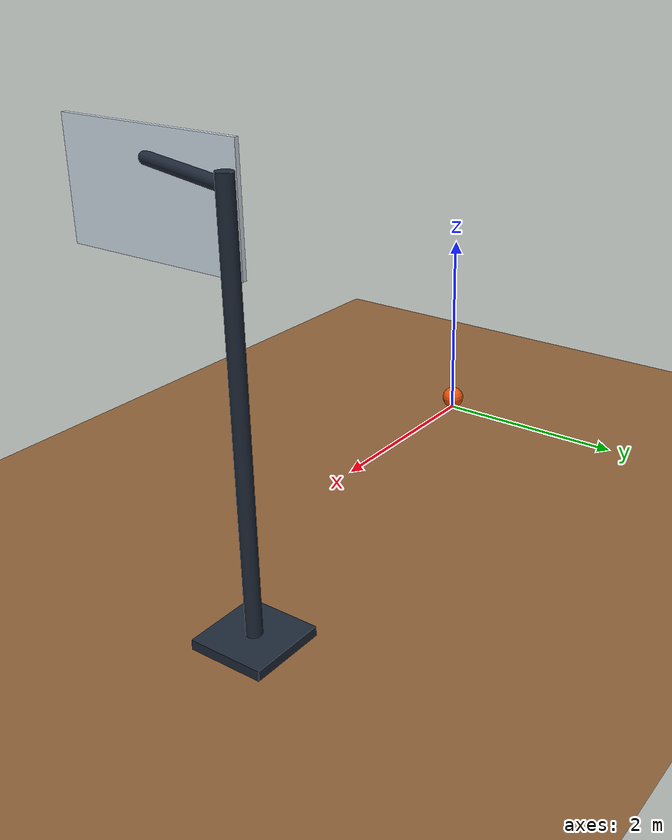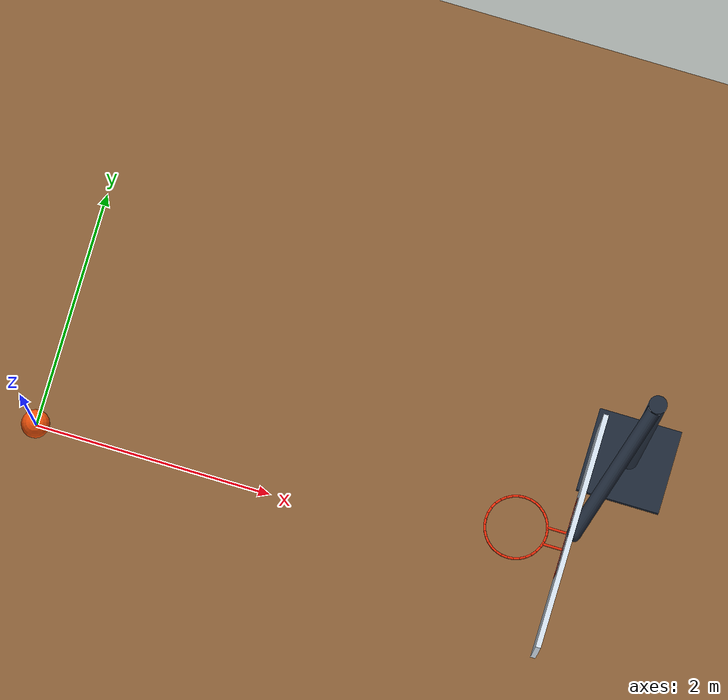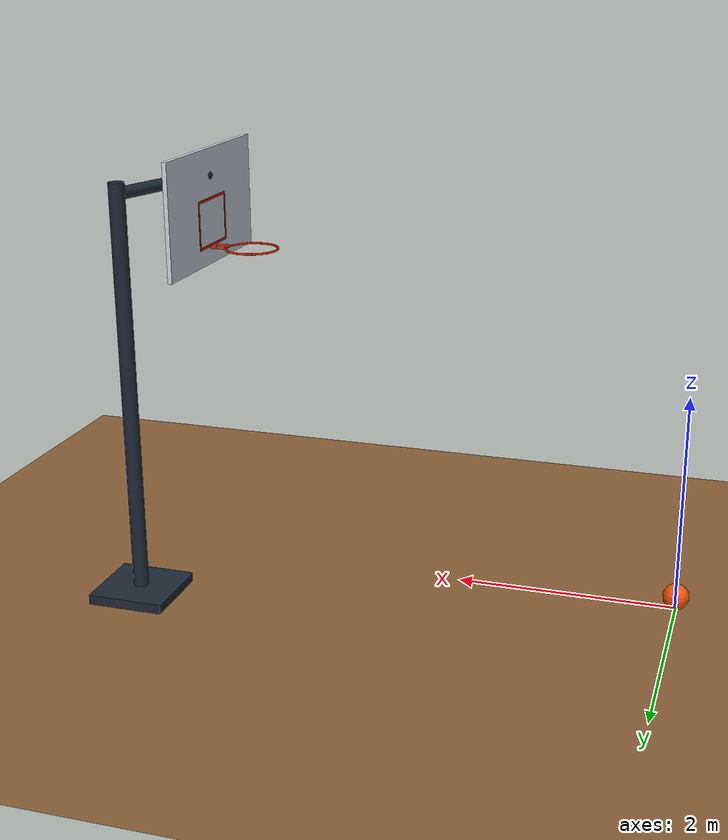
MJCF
<mujoco model="basketball_launch">
  <compiler angle="radian"/>
  <option timestep="0.002" gravity="0 0 -9.81" integrator="Euler"/>

  <visual>
    <headlight ambient="0.35 0.35 0.35" diffuse="0.65 0.65 0.65" specular="0.2 0.2 0.2"/>
    <rgba haze="0.12 0.15 0.2 1"/>
  </visual>

  <asset>
    <material name="basketball_material" rgba="0.95 0.32 0.035 1" specular="0.15" shininess="0.1"/>
    <material name="rim_material" rgba="0.95 0.18 0.035 1" specular="0.4" shininess="0.5"/>
    <material name="board_material" rgba="0.85 0.9 0.95 1" specular="0.3" shininess="0.3"/>
    <material name="support_material" rgba="0.12 0.16 0.22 1"/>
    <material name="floor_material" rgba="0.55 0.38 0.22 1"/>
  </asset>

  <worldbody>
    <light name="court_light" pos="1 -3 7" dir="0.25 0.3 -1" diffuse="0.8 0.8 0.8"/>
    <camera name="overview" pos="2 -8 3.6" xyaxes="1 0 0 0 0.242536 0.970143" fovy="48"/>

    <geom name="floor" type="plane" pos="0 0 0" size="12 12 0.1" material="floor_material" friction="0.7 0.005 0.0001" solref="0.01 0.5" solimp="0.95 0.99 0.001"/>

    <!-- Size-7 basketball: circumference 0.7502 m, mass 0.620 kg. -->
    <body name="ball" pos="0 0 0.1194">
      <freejoint/>
      <geom name="ball" type="sphere" size="0.1194" mass="0.620" material="basketball_material" friction="0.7 0.005 0.0001" solref="0.01 0.5" solimp="0.95 0.99 0.001"/>
    </body>

    <!-- The rim center is exactly 4 m horizontally from launch, at z = 3.05 m. -->
    <body name="hoop" pos="4 0 3.05">
      <geom name="rim_00" type="capsule" fromto="0.238100 0 0 0.233525 0.046451 0" size="0.0095" material="rim_material"/>
      <geom name="rim_01" type="capsule" fromto="0.233525 0.046451 0 0.219976 0.091119 0" size="0.0095" material="rim_material"/>
      <geom name="rim_02" type="capsule" fromto="0.219976 0.091119 0 0.197973 0.132281 0" size="0.0095" material="rim_material"/>
      <geom name="rim_03" type="capsule" fromto="0.197973 0.132281 0 0.168362 0.168362 0" size="0.0095" material="rim_material"/>
      <geom name="rim_04" type="capsule" fromto="0.168362 0.168362 0 0.132281 0.197973 0" size="0.0095" material="rim_material"/>
      <geom name="rim_05" type="capsule" fromto="0.132281 0.197973 0 0.091119 0.219976 0" size="0.0095" material="rim_material"/>
      <geom name="rim_06" type="capsule" fromto="0.091119 0.219976 0 0.046451 0.233525 0" size="0.0095" material="rim_material"/>
      <geom name="rim_07" type="capsule" fromto="0.046451 0.233525 0 0 0.238100 0" size="0.0095" material="rim_material"/>
      <geom name="rim_08" type="capsule" fromto="0 0.238100 0 -0.046451 0.233525 0" size="0.0095" material="rim_material"/>
      <geom name="rim_09" type="capsule" fromto="-0.046451 0.233525 0 -0.091119 0.219976 0" size="0.0095" material="rim_material"/>
      <geom name="rim_10" type="capsule" fromto="-0.091119 0.219976 0 -0.132281 0.197973 0" size="0.0095" material="rim_material"/>
      <geom name="rim_11" type="capsule" fromto="-0.132281 0.197973 0 -0.168362 0.168362 0" size="0.0095" material="rim_material"/>
      <geom name="rim_12" type="capsule" fromto="-0.168362 0.168362 0 -0.197973 0.132281 0" size="0.0095" material="rim_material"/>
      <geom name="rim_13" type="capsule" fromto="-0.197973 0.132281 0 -0.219976 0.091119 0" size="0.0095" material="rim_material"/>
      <geom name="rim_14" type="capsule" fromto="-0.219976 0.091119 0 -0.233525 0.046451 0" size="0.0095" material="rim_material"/>
      <geom name="rim_15" type="capsule" fromto="-0.233525 0.046451 0 -0.238100 0 0" size="0.0095" material="rim_material"/>
      <geom name="rim_16" type="capsule" fromto="-0.238100 0 0 -0.233525 -0.046451 0" size="0.0095" material="rim_material"/>
      <geom name="rim_17" type="capsule" fromto="-0.233525 -0.046451 0 -0.219976 -0.091119 0" size="0.0095" material="rim_material"/>
      <geom name="rim_18" type="capsule" fromto="-0.219976 -0.091119 0 -0.197973 -0.132281 0" size="0.0095" material="rim_material"/>
      <geom name="rim_19" type="capsule" fromto="-0.197973 -0.132281 0 -0.168362 -0.168362 0" size="0.0095" material="rim_material"/>
      <geom name="rim_20" type="capsule" fromto="-0.168362 -0.168362 0 -0.132281 -0.197973 0" size="0.0095" material="rim_material"/>
      <geom name="rim_21" type="capsule" fromto="-0.132281 -0.197973 0 -0.091119 -0.219976 0" size="0.0095" material="rim_material"/>
      <geom name="rim_22" type="capsule" fromto="-0.091119 -0.219976 0 -0.046451 -0.233525 0" size="0.0095" material="rim_material"/>
      <geom name="rim_23" type="capsule" fromto="-0.046451 -0.233525 0 0 -0.238100 0" size="0.0095" material="rim_material"/>
      <geom name="rim_24" type="capsule" fromto="0 -0.238100 0 0.046451 -0.233525 0" size="0.0095" material="rim_material"/>
      <geom name="rim_25" type="capsule" fromto="0.046451 -0.233525 0 0.091119 -0.219976 0" size="0.0095" material="rim_material"/>
      <geom name="rim_26" type="capsule" fromto="0.091119 -0.219976 0 0.132281 -0.197973 0" size="0.0095" material="rim_material"/>
      <geom name="rim_27" type="capsule" fromto="0.132281 -0.197973 0 0.168362 -0.168362 0" size="0.0095" material="rim_material"/>
      <geom name="rim_28" type="capsule" fromto="0.168362 -0.168362 0 0.197973 -0.132281 0" size="0.0095" material="rim_material"/>
      <geom name="rim_29" type="capsule" fromto="0.197973 -0.132281 0 0.219976 -0.091119 0" size="0.0095" material="rim_material"/>
      <geom name="rim_30" type="capsule" fromto="0.219976 -0.091119 0 0.233525 -0.046451 0" size="0.0095" material="rim_material"/>
      <geom name="rim_31" type="capsule" fromto="0.233525 -0.046451 0 0.238100 0 0" size="0.0095" material="rim_material"/>

      <geom name="rim_mount_left" type="capsule" fromto="0.229 0.065 0 0.381 0.065 0" size="0.010" material="rim_material"/>
      <geom name="rim_mount_right" type="capsule" fromto="0.229 -0.065 0 0.381 -0.065 0" size="0.010" material="rim_material"/>
      <geom name="backboard" type="box" pos="0.401 0 0.375" size="0.02 0.9 0.525" material="board_material"/>

      <geom name="target_top" type="box" pos="0.379 0 0.445" size="0.001 0.295 0.0125" rgba="0.85 0.12 0.025 1" contype="0" conaffinity="0"/>
      <geom name="target_bottom" type="box" pos="0.379 0 0.020" size="0.001 0.295 0.0125" rgba="0.85 0.12 0.025 1" contype="0" conaffinity="0"/>
      <geom name="target_left" type="box" pos="0.379 0.2825 0.2325" size="0.001 0.0125 0.225" rgba="0.85 0.12 0.025 1" contype="0" conaffinity="0"/>
      <geom name="target_right" type="box" pos="0.379 -0.2825 0.2325" size="0.001 0.0125 0.225" rgba="0.85 0.12 0.025 1" contype="0" conaffinity="0"/>
    </body>

    <!-- Offset support leaves the ball's landing path unobstructed. -->
    <body name="hoop_support" pos="4.75 1.1 0">
      <geom name="support_base" type="box" pos="0 0 0.045" size="0.35 0.35 0.045" material="support_material"/>
      <geom name="support_pole" type="cylinder" pos="0 0 1.9" size="0.07 1.9" material="support_material"/>
      <geom name="support_arm" type="capsule" fromto="0 0 3.7 -0.329 -1.1 3.7" size="0.055" material="support_material"/>
    </body>
  </worldbody>

  <keyframe>
    <key name="start" time="0" qpos="0 0 0.1194 1 0 0 0" qvel="3.2 0 8.48554 0 0 0"/>
  </keyframe>
</mujoco>
